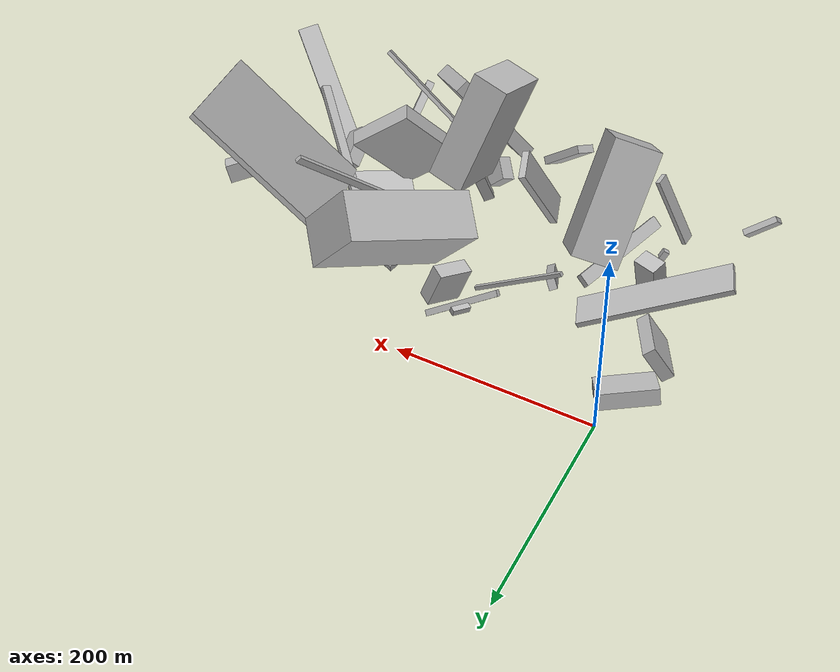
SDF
<sdf version="1.6">
 <world name="default">
  <model name="building_2">
   <static>0</static>
   <pose>430.22964049851106 -145.81984591259112 41.12719555128476 0.5947439418517527 1.272747551305159 2.877065280835325</pose>
   <link name="link">
    <gravity>0</gravity>
    <pose>0 0 9.5 0 0 0</pose>
    <collision name="collision"><geometry><box><size>19 96 19</size></box></geometry></collision>
    <visual name="visual">
     <cast_shadows>0</cast_shadows>
     <geometry><box><size>19 96 19</size></box></geometry>
     <material>
      <script>
       <uri>model://HANNAS_wall/materials/scripts</uri>
       <uri>model://HANNAS_wall/materials/textures</uri>
       <name>vrc/HANNAS_wall</name>
      </script>
     </material>
    </visual>
   </link>
  </model>
  <model name="building_3">
   <static>0</static>
   <pose>285.1072596778333 -52.22203716010444 106.20499982803906 0.4332599796253748 0.7633407422856802 0.6774332220991036</pose>
   <link name="link">
    <gravity>0</gravity>
    <pose>0 0 75.0 0 0 0</pose>
    <collision name="collision"><geometry><box><size>5 150 150</size></box></geometry></collision>
    <visual name="visual">
     <cast_shadows>0</cast_shadows>
     <geometry><box><size>5 150 150</size></box></geometry>
     <material>
      <script>
       <uri>model://HANNAS_wall/materials/scripts</uri>
       <uri>model://HANNAS_wall/materials/textures</uri>
       <name>vrc/HANNAS_wall</name>
      </script>
     </material>
    </visual>
   </link>
  </model>
  <model name="building_4">
   <static>0</static>
   <pose>18.39914659959795 -193.7031230490979 38.16895964998419 2.670174310080353 -0.9903587204269564 -2.2691185488432986</pose>
   <link name="link">
    <gravity>0</gravity>
    <pose>0 0 3.0 0 0 0</pose>
    <collision name="collision"><geometry><box><size>9 7 6</size></box></geometry></collision>
    <visual name="visual">
     <cast_shadows>0</cast_shadows>
     <geometry><box><size>9 7 6</size></box></geometry>
     <material>
      <script>
       <uri>model://HANNAS_wall/materials/scripts</uri>
       <uri>model://HANNAS_wall/materials/textures</uri>
       <name>vrc/HANNAS_wall</name>
      </script>
     </material>
    </visual>
   </link>
  </model>
  <model name="building_7">
   <static>0</static>
   <pose>251.08174676021 -127.81089383993267 54.80756768103109 0.26687428255026957 -0.7893829065582205 -2.553330596945386</pose>
   <link name="link">
    <gravity>0</gravity>
    <pose>0 0 75.0 0 0 0</pose>
    <collision name="collision"><geometry><box><size>7 4 150</size></box></geometry></collision>
    <visual name="visual">
     <cast_shadows>0</cast_shadows>
     <geometry><box><size>7 4 150</size></box></geometry>
     <material>
      <script>
       <uri>model://HANNAS_wall/materials/scripts</uri>
       <uri>model://HANNAS_wall/materials/textures</uri>
       <name>vrc/HANNAS_wall</name>
      </script>
     </material>
    </visual>
   </link>
  </model>
  <model name="building_9">
   <static>0</static>
   <pose>150.30507183944303 -270.1984778559479 49.345641191836066 0.7716984696293924 -0.3578429989684872 1.0685755247972257</pose>
   <link name="link">
    <gravity>0</gravity>
    <pose>0 0 4.0 0 0 0</pose>
    <collision name="collision"><geometry><box><size>21 52 8</size></box></geometry></collision>
    <visual name="visual">
     <cast_shadows>0</cast_shadows>
     <geometry><box><size>21 52 8</size></box></geometry>
     <material>
      <script>
       <uri>model://HANNAS_wall/materials/scripts</uri>
       <uri>model://HANNAS_wall/materials/textures</uri>
       <name>vrc/HANNAS_wall</name>
      </script>
     </material>
    </visual>
   </link>
  </model>
  <model name="building_10">
   <static>0</static>
   <pose>284.9242574271855 -237.09093146082841 24.57054258379894 1.680603102913035 -0.012981616224591161 -0.3728304800079389</pose>
   <link name="link">
    <gravity>0</gravity>
    <pose>0 0 40.5 0 0 0</pose>
    <collision name="collision"><geometry><box><size>6 10 81</size></box></geometry></collision>
    <visual name="visual">
     <cast_shadows>0</cast_shadows>
     <geometry><box><size>6 10 81</size></box></geometry>
     <material>
      <script>
       <uri>model://HANNAS_wall/materials/scripts</uri>
       <uri>model://HANNAS_wall/materials/textures</uri>
       <name>vrc/HANNAS_wall</name>
      </script>
     </material>
    </visual>
   </link>
  </model>
  <model name="building_11">
   <static>0</static>
   <pose>315.0309333129787 -227.81826761469884 58.243659347094884 0.5404643564848365 0.40588801365973864 -2.8952742227914556</pose>
   <link name="link">
    <gravity>0</gravity>
    <pose>0 0 17.5 0 0 0</pose>
    <collision name="collision"><geometry><box><size>8 89 35</size></box></geometry></collision>
    <visual name="visual">
     <cast_shadows>0</cast_shadows>
     <geometry><box><size>8 89 35</size></box></geometry>
     <material>
      <script>
       <uri>model://HANNAS_wall/materials/scripts</uri>
       <uri>model://HANNAS_wall/materials/textures</uri>
       <name>vrc/HANNAS_wall</name>
      </script>
     </material>
    </visual>
   </link>
  </model>
  <model name="building_15">
   <static>0</static>
   <pose>373.8353139626944 -202.70023031056576 32.38617338311666 2.3813753196244623 -0.32474921082462216 -1.4349978125776763</pose>
   <link name="link">
    <gravity>0</gravity>
    <pose>0 0 7.5 0 0 0</pose>
    <collision name="collision"><geometry><box><size>42 24 15</size></box></geometry></collision>
    <visual name="visual">
     <cast_shadows>0</cast_shadows>
     <geometry><box><size>42 24 15</size></box></geometry>
     <material>
      <script>
       <uri>model://HANNAS_wall/materials/scripts</uri>
       <uri>model://HANNAS_wall/materials/textures</uri>
       <name>vrc/HANNAS_wall</name>
      </script>
     </material>
    </visual>
   </link>
  </model>
  <model name="building_17">
   <static>0</static>
   <pose>344.8934774342147 -154.62044392500698 86.15602177892333 1.0428114781570164 -0.9521643719751095 2.999347024257238</pose>
   <link name="link">
    <gravity>0</gravity>
    <pose>0 0 4.5 0 0 0</pose>
    <collision name="collision"><geometry><box><size>5 115 9</size></box></geometry></collision>
    <visual name="visual">
     <cast_shadows>0</cast_shadows>
     <geometry><box><size>5 115 9</size></box></geometry>
     <material>
      <script>
       <uri>model://HANNAS_wall/materials/scripts</uri>
       <uri>model://HANNAS_wall/materials/textures</uri>
       <name>vrc/HANNAS_wall</name>
      </script>
     </material>
    </visual>
   </link>
  </model>
  <model name="building_19">
   <static>0</static>
   <pose>89.80329886206083 -263.4386565281967 35.816969874623844 0.8624735887561417 0.04911760296846456 0.9478747413406946</pose>
   <link name="link">
    <gravity>0</gravity>
    <pose>0 0 19.5 0 0 0</pose>
    <collision name="collision"><geometry><box><size>8 51 39</size></box></geometry></collision>
    <visual name="visual">
     <cast_shadows>0</cast_shadows>
     <geometry><box><size>8 51 39</size></box></geometry>
     <material>
      <script>
       <uri>model://HANNAS_wall/materials/scripts</uri>
       <uri>model://HANNAS_wall/materials/textures</uri>
       <name>vrc/HANNAS_wall</name>
      </script>
     </material>
    </visual>
   </link>
  </model>
  <model name="building_21">
   <static>0</static>
   <pose>6.236951813412457 -163.8865394011361 28.760782117187517 1.6151427892492103 0.16364247912279356 1.2368070174193073</pose>
   <link name="link">
    <gravity>0</gravity>
    <pose>0 0 12.0 0 0 0</pose>
    <collision name="collision"><geometry><box><size>17 46 24</size></box></geometry></collision>
    <visual name="visual">
     <cast_shadows>0</cast_shadows>
     <geometry><box><size>17 46 24</size></box></geometry>
     <material>
      <script>
       <uri>model://HANNAS_wall/materials/scripts</uri>
       <uri>model://HANNAS_wall/materials/textures</uri>
       <name>vrc/HANNAS_wall</name>
      </script>
     </material>
    </visual>
   </link>
  </model>
  <model name="building_23">
   <static>0</static>
   <pose>60.39136891593175 -201.45350834016295 17.546311672024686 3.0235139636010655 0.657204212063986 2.852670025672172</pose>
   <link name="link">
    <gravity>0</gravity>
    <pose>0 0 3.0 0 0 0</pose>
    <collision name="collision"><geometry><box><size>13 126 6</size></box></geometry></collision>
    <visual name="visual">
     <cast_shadows>0</cast_shadows>
     <geometry><box><size>13 126 6</size></box></geometry>
     <material>
      <script>
       <uri>model://HANNAS_wall/materials/scripts</uri>
       <uri>model://HANNAS_wall/materials/textures</uri>
       <name>vrc/HANNAS_wall</name>
      </script>
     </material>
    </visual>
   </link>
  </model>
  <model name="building_24">
   <static>0</static>
   <pose>119.17595668787624 -89.40749235510923 44.31549651150977 0.5719117996067377 -0.11889308719697667 1.5210560551633483</pose>
   <link name="link">
    <gravity>0</gravity>
    <pose>0 0 2.0 0 0 0</pose>
    <collision name="collision"><geometry><box><size>4 102 4</size></box></geometry></collision>
    <visual name="visual">
     <cast_shadows>0</cast_shadows>
     <geometry><box><size>4 102 4</size></box></geometry>
     <material>
      <script>
       <uri>model://HANNAS_wall/materials/scripts</uri>
       <uri>model://HANNAS_wall/materials/textures</uri>
       <name>vrc/HANNAS_wall</name>
      </script>
     </material>
    </visual>
   </link>
  </model>
  <model name="building_26">
   <static>0</static>
   <pose>469.79881200599203 -213.33907629228887 7.895743680429434 2.8180984385652286 -1.119323688729656 -2.4765728731156913</pose>
   <link name="link">
    <gravity>0</gravity>
    <pose>0 0 2.0 0 0 0</pose>
    <collision name="collision"><geometry><box><size>4 71 4</size></box></geometry></collision>
    <visual name="visual">
     <cast_shadows>0</cast_shadows>
     <geometry><box><size>4 71 4</size></box></geometry>
     <material>
      <script>
       <uri>model://HANNAS_wall/materials/scripts</uri>
       <uri>model://HANNAS_wall/materials/textures</uri>
       <name>vrc/HANNAS_wall</name>
      </script>
     </material>
    </visual>
   </link>
  </model>
  <model name="building_27">
   <static>0</static>
   <pose>-8.325968259196472 -41.67677684605162 21.123345838891705 1.2588770139466425 -0.06917317076052482 -2.6053916828167525</pose>
   <link name="link">
    <gravity>0</gravity>
    <pose>0 0 15.0 0 0 0</pose>
    <collision name="collision"><geometry><box><size>56 16 30</size></box></geometry></collision>
    <visual name="visual">
     <cast_shadows>0</cast_shadows>
     <geometry><box><size>56 16 30</size></box></geometry>
     <material>
      <script>
       <uri>model://HANNAS_wall/materials/scripts</uri>
       <uri>model://HANNAS_wall/materials/textures</uri>
       <name>vrc/HANNAS_wall</name>
      </script>
     </material>
    </visual>
   </link>
  </model>
  <model name="building_28">
   <static>0</static>
   <pose>323.411577667159 -127.12034172855297 33.64682809290955 1.6959255208697854 -0.05145693446540379 -0.9366069638173036</pose>
   <link name="link">
    <gravity>0</gravity>
    <pose>0 0 31.0 0 0 0</pose>
    <collision name="collision"><geometry><box><size>63 24 62</size></box></geometry></collision>
    <visual name="visual">
     <cast_shadows>0</cast_shadows>
     <geometry><box><size>63 24 62</size></box></geometry>
     <material>
      <script>
       <uri>model://HANNAS_wall/materials/scripts</uri>
       <uri>model://HANNAS_wall/materials/textures</uri>
       <name>vrc/HANNAS_wall</name>
      </script>
     </material>
    </visual>
   </link>
  </model>
  <model name="building_29">
   <static>0</static>
   <pose>-56.03470580843242 -283.9558157091923 28.29504611590911 0.6588431882457111 0.5226113586716972 2.3958351334983186</pose>
   <link name="link">
    <gravity>0</gravity>
    <pose>0 0 9.5 0 0 0</pose>
    <collision name="collision"><geometry><box><size>6 35 19</size></box></geometry></collision>
    <visual name="visual">
     <cast_shadows>0</cast_shadows>
     <geometry><box><size>6 35 19</size></box></geometry>
     <material>
      <script>
       <uri>model://HANNAS_wall/materials/scripts</uri>
       <uri>model://HANNAS_wall/materials/textures</uri>
       <name>vrc/HANNAS_wall</name>
      </script>
     </material>
    </visual>
   </link>
  </model>
  <model name="building_30">
   <static>0</static>
   <pose>209.93881003943187 -235.59185066957053 20.06120226000434 0.9141072906354146 -0.4477277983251134 1.024906481778673</pose>
   <link name="link">
    <gravity>0</gravity>
    <pose>0 0 12.0 0 0 0</pose>
    <collision name="collision"><geometry><box><size>15 23 24</size></box></geometry></collision>
    <visual name="visual">
     <cast_shadows>0</cast_shadows>
     <geometry><box><size>15 23 24</size></box></geometry>
     <material>
      <script>
       <uri>model://HANNAS_wall/materials/scripts</uri>
       <uri>model://HANNAS_wall/materials/textures</uri>
       <name>vrc/HANNAS_wall</name>
      </script>
     </material>
    </visual>
   </link>
  </model>
  <model name="building_33">
   <static>0</static>
   <pose>0.5073109028105147 -125.40764195552764 52.529067623918046 2.7210838207942154 -0.040866656281645306 -1.2025165014349928</pose>
   <link name="link">
    <gravity>0</gravity>
    <pose>0 0 3.0 0 0 0</pose>
    <collision name="collision"><geometry><box><size>33 150 6</size></box></geometry></collision>
    <visual name="visual">
     <cast_shadows>0</cast_shadows>
     <geometry><box><size>33 150 6</size></box></geometry>
     <material>
      <script>
       <uri>model://HANNAS_wall/materials/scripts</uri>
       <uri>model://HANNAS_wall/materials/textures</uri>
       <name>vrc/HANNAS_wall</name>
      </script>
     </material>
    </visual>
   </link>
  </model>
  <model name="building_35">
   <static>0</static>
   <pose>223.21576276998982 -221.27685166700462 66.40677987704942 0.8306800536386325 -0.5425674503424661 1.919702492212242</pose>
   <link name="link">
    <gravity>0</gravity>
    <pose>0 0 68.5 0 0 0</pose>
    <collision name="collision"><geometry><box><size>10 4 137</size></box></geometry></collision>
    <visual name="visual">
     <cast_shadows>0</cast_shadows>
     <geometry><box><size>10 4 137</size></box></geometry>
     <material>
      <script>
       <uri>model://HANNAS_wall/materials/scripts</uri>
       <uri>model://HANNAS_wall/materials/textures</uri>
       <name>vrc/HANNAS_wall</name>
      </script>
     </material>
    </visual>
   </link>
  </model>
  <model name="building_36">
   <static>0</static>
   <pose>269.23515096302276 -97.94565723745279 30.018340938368382 -1.8038250214753093 0.237594242788851 1.230588246955226</pose>
   <link name="link">
    <gravity>0</gravity>
    <pose>0 0 14.5 0 0 0</pose>
    <collision name="collision"><geometry><box><size>38 9 29</size></box></geometry></collision>
    <visual name="visual">
     <cast_shadows>0</cast_shadows>
     <geometry><box><size>38 9 29</size></box></geometry>
     <material>
      <script>
       <uri>model://HANNAS_wall/materials/scripts</uri>
       <uri>model://HANNAS_wall/materials/textures</uri>
       <name>vrc/HANNAS_wall</name>
      </script>
     </material>
    </visual>
   </link>
  </model>
  <model name="building_40">
   <static>0</static>
   <pose>265.17980277365433 -193.947833603243 56.3917796107872 0.6647397673048071 0.2775623455532581 2.074277033190878</pose>
   <link name="link">
    <gravity>0</gravity>
    <pose>0 0 41.5 0 0 0</pose>
    <collision name="collision"><geometry><box><size>16 68 83</size></box></geometry></collision>
    <visual name="visual">
     <cast_shadows>0</cast_shadows>
     <geometry><box><size>16 68 83</size></box></geometry>
     <material>
      <script>
       <uri>model://HANNAS_wall/materials/scripts</uri>
       <uri>model://HANNAS_wall/materials/textures</uri>
       <name>vrc/HANNAS_wall</name>
      </script>
     </material>
    </visual>
   </link>
  </model>
  <model name="building_41">
   <static>0</static>
   <pose>273.53758632524796 -291.36000225307413 63.101889363065936 2.100457153072144 -0.3396897597805933 1.4818375091341836</pose>
   <link name="link">
    <gravity>0</gravity>
    <pose>0 0 6.0 0 0 0</pose>
    <collision name="collision"><geometry><box><size>8 4 12</size></box></geometry></collision>
    <visual name="visual">
     <cast_shadows>0</cast_shadows>
     <geometry><box><size>8 4 12</size></box></geometry>
     <material>
      <script>
       <uri>model://HANNAS_wall/materials/scripts</uri>
       <uri>model://HANNAS_wall/materials/textures</uri>
       <name>vrc/HANNAS_wall</name>
      </script>
     </material>
    </visual>
   </link>
  </model>
  <model name="building_47">
   <static>0</static>
   <pose>145.01933980946572 -184.1064619163253 60.789876214485005 1.2284350647949986 0.3387062746200252 0.19619590336797735</pose>
   <link name="link">
    <gravity>0</gravity>
    <pose>0 0 15.0 0 0 0</pose>
    <collision name="collision"><geometry><box><size>7 86 30</size></box></geometry></collision>
    <visual name="visual">
     <cast_shadows>0</cast_shadows>
     <geometry><box><size>7 86 30</size></box></geometry>
     <material>
      <script>
       <uri>model://HANNAS_wall/materials/scripts</uri>
       <uri>model://HANNAS_wall/materials/textures</uri>
       <name>vrc/HANNAS_wall</name>
      </script>
     </material>
    </visual>
   </link>
  </model>
  <model name="building_49">
   <static>0</static>
   <pose>176.216552683715 -82.84964025643798 29.67407339792641 0.6394402324532397 -1.2201905870587684 -2.752558749886286</pose>
   <link name="link">
    <gravity>0</gravity>
    <pose>0 0 17.5 0 0 0</pose>
    <collision name="collision"><geometry><box><size>39 15 35</size></box></geometry></collision>
    <visual name="visual">
     <cast_shadows>0</cast_shadows>
     <geometry><box><size>39 15 35</size></box></geometry>
     <material>
      <script>
       <uri>model://HANNAS_wall/materials/scripts</uri>
       <uri>model://HANNAS_wall/materials/textures</uri>
       <name>vrc/HANNAS_wall</name>
      </script>
     </material>
    </visual>
   </link>
  </model>
  <model name="building_51">
   <static>0</static>
   <pose>157.43487600842528 -51.99260275033852 34.09055065011477 0.8018532827008219 0.7252847208820633 2.3967238584677295</pose>
   <link name="link">
    <gravity>0</gravity>
    <pose>0 0 2.5 0 0 0</pose>
    <collision name="collision"><geometry><box><size>6 81 5</size></box></geometry></collision>
    <visual name="visual">
     <cast_shadows>0</cast_shadows>
     <geometry><box><size>6 81 5</size></box></geometry>
     <material>
      <script>
       <uri>model://HANNAS_wall/materials/scripts</uri>
       <uri>model://HANNAS_wall/materials/textures</uri>
       <name>vrc/HANNAS_wall</name>
      </script>
     </material>
    </visual>
   </link>
  </model>
  <model name="building_54">
   <static>0</static>
   <pose>206.3684437764087 -142.31259583626883 104.34148661443638 -0.26429907848343187 -0.36871330987775053 1.5554765853064818</pose>
   <link name="link">
    <gravity>0</gravity>
    <pose>0 0 53.5 0 0 0</pose>
    <collision name="collision"><geometry><box><size>69 35 107</size></box></geometry></collision>
    <visual name="visual">
     <cast_shadows>0</cast_shadows>
     <geometry><box><size>69 35 107</size></box></geometry>
     <material>
      <script>
       <uri>model://HANNAS_wall/materials/scripts</uri>
       <uri>model://HANNAS_wall/materials/textures</uri>
       <name>vrc/HANNAS_wall</name>
      </script>
     </material>
    </visual>
   </link>
  </model>
  <model name="building_57">
   <static>0</static>
   <pose>431.99277455270703 -245.1385884506525 50.90240254999307 1.3899009868744772 -0.6253799106949045 -0.647549988844633</pose>
   <link name="link">
    <gravity>0</gravity>
    <pose>0 0 11.0 0 0 0</pose>
    <collision name="collision"><geometry><box><size>150 6 22</size></box></geometry></collision>
    <visual name="visual">
     <cast_shadows>0</cast_shadows>
     <geometry><box><size>150 6 22</size></box></geometry>
     <material>
      <script>
       <uri>model://HANNAS_wall/materials/scripts</uri>
       <uri>model://HANNAS_wall/materials/textures</uri>
       <name>vrc/HANNAS_wall</name>
      </script>
     </material>
    </visual>
   </link>
  </model>
  <model name="building_58">
   <static>0</static>
   <pose>213.76625416868558 -199.84864130459403 61.27069274484174 3.0890991860626436 -1.2313813846810426 0.6339643800312127</pose>
   <link name="link">
    <gravity>0</gravity>
    <pose>0 0 5.5 0 0 0</pose>
    <collision name="collision"><geometry><box><size>70 11 11</size></box></geometry></collision>
    <visual name="visual">
     <cast_shadows>0</cast_shadows>
     <geometry><box><size>70 11 11</size></box></geometry>
     <material>
      <script>
       <uri>model://HANNAS_wall/materials/scripts</uri>
       <uri>model://HANNAS_wall/materials/textures</uri>
       <name>vrc/HANNAS_wall</name>
      </script>
     </material>
    </visual>
   </link>
  </model>
  <model name="building_60">
   <static>0</static>
   <pose>154.97198183763425 -38.79577027346123 41.97978126231768 1.7015222207289193 0.17469179099122548 -2.1694872547147925</pose>
   <link name="link">
    <gravity>0</gravity>
    <pose>0 0 3.0 0 0 0</pose>
    <collision name="collision"><geometry><box><size>18 6 6</size></box></geometry></collision>
    <visual name="visual">
     <cast_shadows>0</cast_shadows>
     <geometry><box><size>18 6 6</size></box></geometry>
     <material>
      <script>
       <uri>model://HANNAS_wall/materials/scripts</uri>
       <uri>model://HANNAS_wall/materials/textures</uri>
       <name>vrc/HANNAS_wall</name>
      </script>
     </material>
    </visual>
   </link>
  </model>
  <model name="building_61">
   <static>0</static>
   <pose>189.15375977634744 -229.51773370836395 81.81240945511225 -0.360934478236739 -0.5836117854397171 -2.0844571240761427</pose>
   <link name="link">
    <gravity>0</gravity>
    <pose>0 0 51.5 0 0 0</pose>
    <collision name="collision"><geometry><box><size>14 56 103</size></box></geometry></collision>
    <visual name="visual">
     <cast_shadows>0</cast_shadows>
     <geometry><box><size>14 56 103</size></box></geometry>
     <material>
      <script>
       <uri>model://HANNAS_wall/materials/scripts</uri>
       <uri>model://HANNAS_wall/materials/textures</uri>
       <name>vrc/HANNAS_wall</name>
      </script>
     </material>
    </visual>
   </link>
  </model>
  <model name="building_62">
   <static>0</static>
   <pose>163.3102470799688 -44.252720488743044 132.09828095746445 0.9737618908228076 -0.8710177421303535 2.9921224341158705</pose>
   <link name="link">
    <gravity>0</gravity>
    <pose>0 0 60.0 0 0 0</pose>
    <collision name="collision"><geometry><box><size>73 43 120</size></box></geometry></collision>
    <visual name="visual">
     <cast_shadows>0</cast_shadows>
     <geometry><box><size>73 43 120</size></box></geometry>
     <material>
      <script>
       <uri>model://HANNAS_wall/materials/scripts</uri>
       <uri>model://HANNAS_wall/materials/textures</uri>
       <name>vrc/HANNAS_wall</name>
      </script>
     </material>
    </visual>
   </link>
  </model>
  <model name="building_64">
   <static>0</static>
   <pose>59.349781368178036 -170.25196259856872 101.16020971394116 2.1035133439090656 -0.34248033311802145 0.3868250354631949</pose>
   <link name="link">
    <gravity>0</gravity>
    <pose>0 0 25.5 0 0 0</pose>
    <collision name="collision"><geometry><box><size>47 117 51</size></box></geometry></collision>
    <visual name="visual">
     <cast_shadows>0</cast_shadows>
     <geometry><box><size>47 117 51</size></box></geometry>
     <material>
      <script>
       <uri>model://HANNAS_wall/materials/scripts</uri>
       <uri>model://HANNAS_wall/materials/textures</uri>
       <name>vrc/HANNAS_wall</name>
      </script>
     </material>
    </visual>
   </link>
  </model>
  <model name="building_67">
   <static>0</static>
   <pose>-24.85357820117472 -119.0399224163378 135.67381538303422 0.18464723179265471 -0.37612360307166715 2.9573714613539672</pose>
   <link name="link">
    <gravity>0</gravity>
    <pose>0 0 35.0 0 0 0</pose>
    <collision name="collision"><geometry><box><size>4 11 70</size></box></geometry></collision>
    <visual name="visual">
     <cast_shadows>0</cast_shadows>
     <geometry><box><size>4 11 70</size></box></geometry>
     <material>
      <script>
       <uri>model://HANNAS_wall/materials/scripts</uri>
       <uri>model://HANNAS_wall/materials/textures</uri>
       <name>vrc/HANNAS_wall</name>
      </script>
     </material>
    </visual>
   </link>
  </model>
  <model name="building_68">
   <static>0</static>
   <pose>106.08817260301235 -127.92770470014209 22.700297648940264 -1.235082395981377 -0.5483165872327341 1.9553300140397245</pose>
   <link name="link">
    <gravity>0</gravity>
    <pose>0 0 4.0 0 0 0</pose>
    <collision name="collision"><geometry><box><size>53 13 8</size></box></geometry></collision>
    <visual name="visual">
     <cast_shadows>0</cast_shadows>
     <geometry><box><size>53 13 8</size></box></geometry>
     <material>
      <script>
       <uri>model://HANNAS_wall/materials/scripts</uri>
       <uri>model://HANNAS_wall/materials/textures</uri>
       <name>vrc/HANNAS_wall</name>
      </script>
     </material>
    </visual>
   </link>
  </model>
  <model name="building_71">
   <static>0</static>
   <pose>470.4466213589428 -149.89111112379476 67.96471922048836 -0.4070868550496839 -0.4390095909692687 -0.2331000361412139</pose>
   <link name="link">
    <gravity>0</gravity>
    <pose>0 0 34.0 0 0 0</pose>
    <collision name="collision"><geometry><box><size>18 23 68</size></box></geometry></collision>
    <visual name="visual">
     <cast_shadows>0</cast_shadows>
     <geometry><box><size>18 23 68</size></box></geometry>
     <material>
      <script>
       <uri>model://HANNAS_wall/materials/scripts</uri>
       <uri>model://HANNAS_wall/materials/textures</uri>
       <name>vrc/HANNAS_wall</name>
      </script>
     </material>
    </visual>
   </link>
  </model>
  <model name="building_73">
   <static>0</static>
   <pose>-35.929331200136915 -64.72314642152007 40.626438800297414 0.19922346781876837 0.5597598374215107 0.5888852109173396</pose>
   <link name="link">
    <gravity>0</gravity>
    <pose>0 0 17.5 0 0 0</pose>
    <collision name="collision"><geometry><box><size>12 51 35</size></box></geometry></collision>
    <visual name="visual">
     <cast_shadows>0</cast_shadows>
     <geometry><box><size>12 51 35</size></box></geometry>
     <material>
      <script>
       <uri>model://HANNAS_wall/materials/scripts</uri>
       <uri>model://HANNAS_wall/materials/textures</uri>
       <name>vrc/HANNAS_wall</name>
      </script>
     </material>
    </visual>
   </link>
  </model>
  <model name="building_77">
   <static>0</static>
   <pose>257.4705656323106 -259.889973983345 11.09233594455349 2.075792354651612 -0.8671438272159036 -2.0944803361088633</pose>
   <link name="link">
    <gravity>0</gravity>
    <pose>0 0 5.0 0 0 0</pose>
    <collision name="collision"><geometry><box><size>4 4 10</size></box></geometry></collision>
    <visual name="visual">
     <cast_shadows>0</cast_shadows>
     <geometry><box><size>4 4 10</size></box></geometry>
     <material>
      <script>
       <uri>model://HANNAS_wall/materials/scripts</uri>
       <uri>model://HANNAS_wall/materials/textures</uri>
       <name>vrc/HANNAS_wall</name>
      </script>
     </material>
    </visual>
   </link>
  </model>
 </world>
</sdf>
